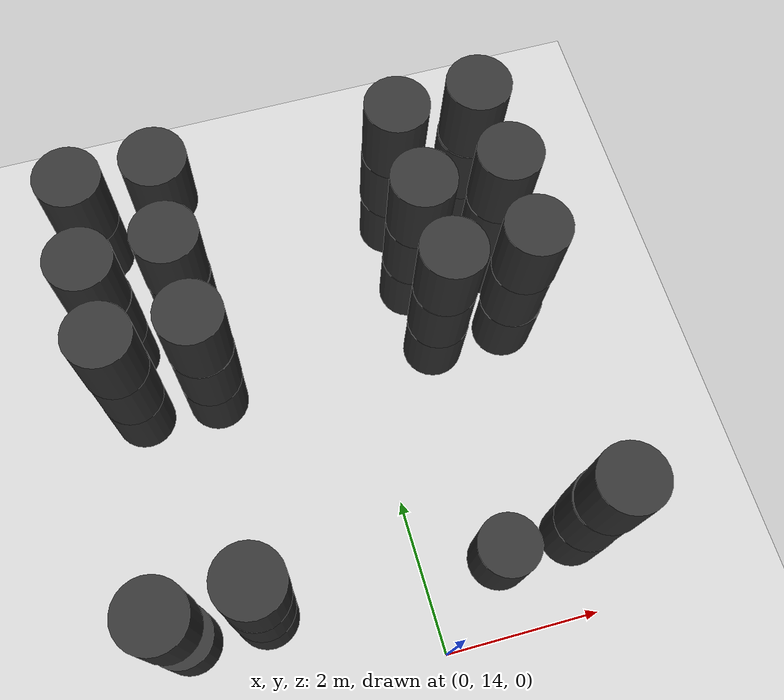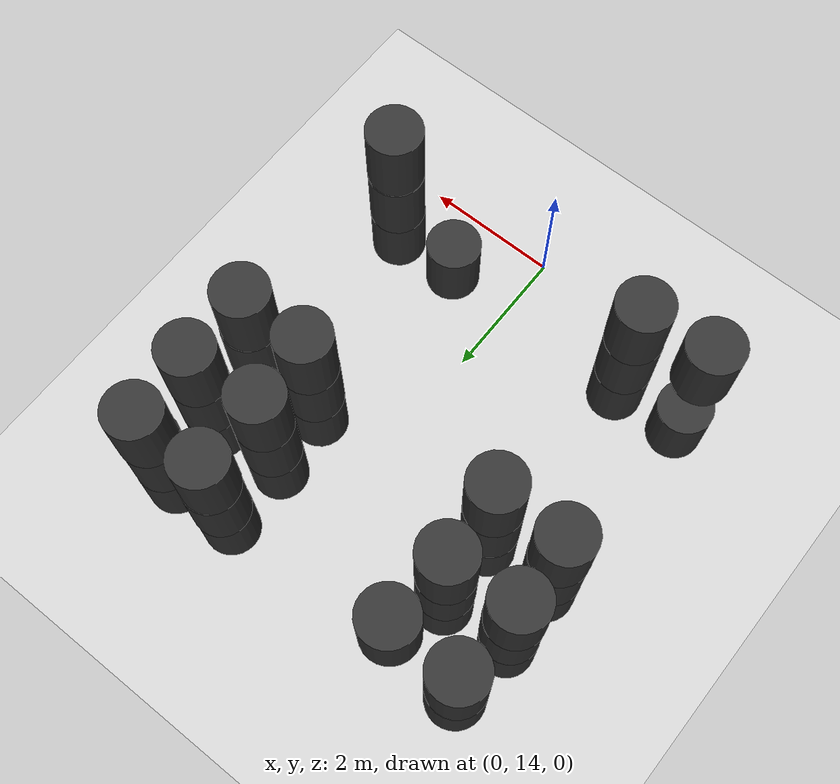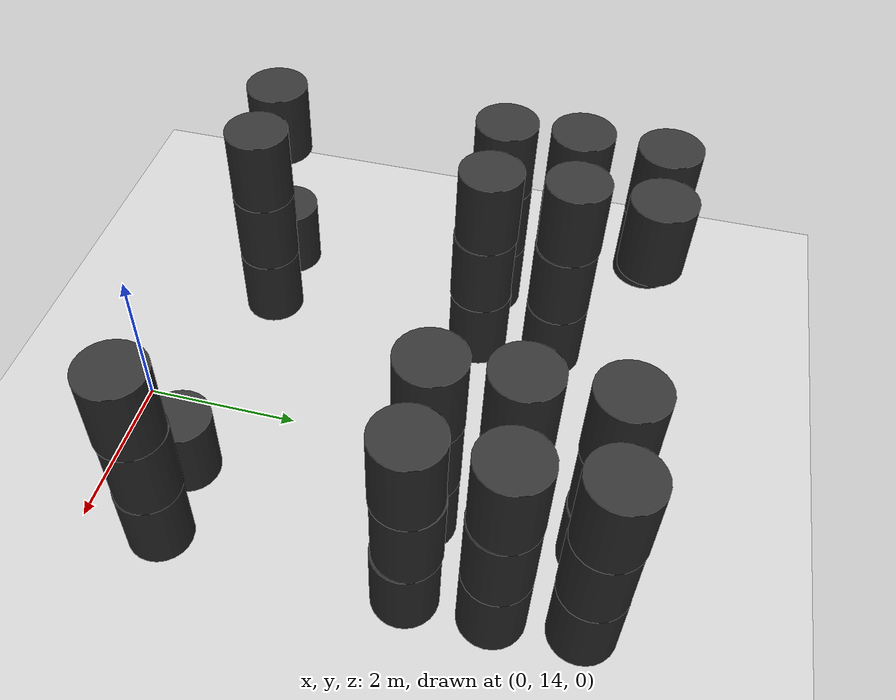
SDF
<sdf version="1.6">
 <world name="default">
  <include><uri>model://ground_plane</uri></include>
  <model name="cylinder_24">
   <pose frame="sim_world">-3.042406147 14.9754270639 0.5 0 -0 0</pose>
   <static>True</static>
   <link name="cylinder_24_link">
    <inertial>
     <mass>100</mass>
     <inertia><ixx>0.145833</ixx><ixy>0</ixy><ixz>0</ixz><iyy>0.145833</iyy><iyz>0</iyz><izz>0.125</izz></inertia>
    </inertial>
    <collision name="cylinder_24_collision">
     <geometry><cylinder><length>1.0</length><radius>0.4</radius></cylinder></geometry>
     <max_contacts>100</max_contacts>
    </collision>
    <visual name="cylinder_24_visual">
     <geometry><cylinder><length>1.0</length><radius>0.4</radius></cylinder></geometry>
     <material><ambient>0.2 0.2 0.2 1</ambient><diffuse>0.2 0.2 0.2 1</diffuse></material>
    </visual>
   </link>
  </model>
  <model name="cylinder_26">
   <pose frame="sim_world">-3.03224205885 14.9648059669 2.5 0 -0 0</pose>
   <static>True</static>
   <link name="cylinder_26_link">
    <inertial>
     <mass>100</mass>
     <inertia><ixx>0.145833</ixx><ixy>0</ixy><ixz>0</ixz><iyy>0.145833</iyy><iyz>0</iyz><izz>0.125</izz></inertia>
    </inertial>
    <collision name="cylinder_26_collision">
     <geometry><cylinder><length>1.0</length><radius>0.4</radius></cylinder></geometry>
     <max_contacts>100</max_contacts>
    </collision>
    <visual name="cylinder_26_visual">
     <geometry><cylinder><length>1.0</length><radius>0.4</radius></cylinder></geometry>
     <material><ambient>0.2 0.2 0.2 1</ambient><diffuse>0.2 0.2 0.2 1</diffuse></material>
    </visual>
   </link>
  </model>
  <model name="cylinder_27">
   <pose frame="sim_world">-3.00701187167 18.023755769 0.5 0 -0 0</pose>
   <static>True</static>
   <link name="cylinder_27_link">
    <inertial>
     <mass>100</mass>
     <inertia><ixx>0.145833</ixx><ixy>0</ixy><ixz>0</ixz><iyy>0.145833</iyy><iyz>0</iyz><izz>0.125</izz></inertia>
    </inertial>
    <collision name="cylinder_27_collision">
     <geometry><cylinder><length>1.0</length><radius>0.4</radius></cylinder></geometry>
     <max_contacts>100</max_contacts>
    </collision>
    <visual name="cylinder_27_visual">
     <geometry><cylinder><length>1.0</length><radius>0.4</radius></cylinder></geometry>
     <material><ambient>0.2 0.2 0.2 1</ambient><diffuse>0.2 0.2 0.2 1</diffuse></material>
    </visual>
   </link>
  </model>
  <model name="cylinder_28">
   <pose frame="sim_world">-3.00248028948 18.0226749165 1.5 0 -0 0</pose>
   <static>True</static>
   <link name="cylinder_28_link">
    <inertial>
     <mass>100</mass>
     <inertia><ixx>0.145833</ixx><ixy>0</ixy><ixz>0</ixz><iyy>0.145833</iyy><iyz>0</iyz><izz>0.125</izz></inertia>
    </inertial>
    <collision name="cylinder_28_collision">
     <geometry><cylinder><length>1.0</length><radius>0.4</radius></cylinder></geometry>
     <max_contacts>100</max_contacts>
    </collision>
    <visual name="cylinder_28_visual">
     <geometry><cylinder><length>1.0</length><radius>0.4</radius></cylinder></geometry>
     <material><ambient>0.2 0.2 0.2 1</ambient><diffuse>0.2 0.2 0.2 1</diffuse></material>
    </visual>
   </link>
  </model>
  <model name="cylinder_29">
   <pose frame="sim_world">-3.00870383393 18.0157991154 2.5 0 -0 0</pose>
   <static>True</static>
   <link name="cylinder_29_link">
    <inertial>
     <mass>100</mass>
     <inertia><ixx>0.145833</ixx><ixy>0</ixy><ixz>0</ixz><iyy>0.145833</iyy><iyz>0</iyz><izz>0.125</izz></inertia>
    </inertial>
    <collision name="cylinder_29_collision">
     <geometry><cylinder><length>1.0</length><radius>0.4</radius></cylinder></geometry>
     <max_contacts>100</max_contacts>
    </collision>
    <visual name="cylinder_29_visual">
     <geometry><cylinder><length>1.0</length><radius>0.4</radius></cylinder></geometry>
     <material><ambient>0.2 0.2 0.2 1</ambient><diffuse>0.2 0.2 0.2 1</diffuse></material>
    </visual>
   </link>
  </model>
  <model name="cylinder_30">
   <pose frame="sim_world">-3.03980811727 18.9614411124 0.5 0 -0 0</pose>
   <static>True</static>
   <link name="cylinder_30_link">
    <inertial>
     <mass>100</mass>
     <inertia><ixx>0.145833</ixx><ixy>0</ixy><ixz>0</ixz><iyy>0.145833</iyy><iyz>0</iyz><izz>0.125</izz></inertia>
    </inertial>
    <collision name="cylinder_30_collision">
     <geometry><cylinder><length>1.0</length><radius>0.4</radius></cylinder></geometry>
     <max_contacts>100</max_contacts>
    </collision>
    <visual name="cylinder_30_visual">
     <geometry><cylinder><length>1.0</length><radius>0.4</radius></cylinder></geometry>
     <material><ambient>0.2 0.2 0.2 1</ambient><diffuse>0.2 0.2 0.2 1</diffuse></material>
    </visual>
   </link>
  </model>
  <model name="cylinder_31">
   <pose frame="sim_world">-3.03408151154 18.9624144078 1.5 0 -0 0</pose>
   <static>True</static>
   <link name="cylinder_31_link">
    <inertial>
     <mass>100</mass>
     <inertia><ixx>0.145833</ixx><ixy>0</ixy><ixz>0</ixz><iyy>0.145833</iyy><iyz>0</iyz><izz>0.125</izz></inertia>
    </inertial>
    <collision name="cylinder_31_collision">
     <geometry><cylinder><length>1.0</length><radius>0.4</radius></cylinder></geometry>
     <max_contacts>100</max_contacts>
    </collision>
    <visual name="cylinder_31_visual">
     <geometry><cylinder><length>1.0</length><radius>0.4</radius></cylinder></geometry>
     <material><ambient>0.2 0.2 0.2 1</ambient><diffuse>0.2 0.2 0.2 1</diffuse></material>
    </visual>
   </link>
  </model>
  <model name="cylinder_32">
   <pose frame="sim_world">-3.04690763 18.9666969515 2.5 0 -0 0</pose>
   <static>True</static>
   <link name="cylinder_32_link">
    <inertial>
     <mass>100</mass>
     <inertia><ixx>0.145833</ixx><ixy>0</ixy><ixz>0</ixz><iyy>0.145833</iyy><iyz>0</iyz><izz>0.125</izz></inertia>
    </inertial>
    <collision name="cylinder_32_collision">
     <geometry><cylinder><length>1.0</length><radius>0.4</radius></cylinder></geometry>
     <max_contacts>100</max_contacts>
    </collision>
    <visual name="cylinder_32_visual">
     <geometry><cylinder><length>1.0</length><radius>0.4</radius></cylinder></geometry>
     <material><ambient>0.2 0.2 0.2 1</ambient><diffuse>0.2 0.2 0.2 1</diffuse></material>
    </visual>
   </link>
  </model>
  <model name="cylinder_34">
   <pose frame="sim_world">-2.99322209723 20.0410647307 1.5 0 -0 0</pose>
   <static>True</static>
   <link name="cylinder_34_link">
    <inertial>
     <mass>100</mass>
     <inertia><ixx>0.145833</ixx><ixy>0</ixy><ixz>0</ixz><iyy>0.145833</iyy><iyz>0</iyz><izz>0.125</izz></inertia>
    </inertial>
    <collision name="cylinder_34_collision">
     <geometry><cylinder><length>1.0</length><radius>0.4</radius></cylinder></geometry>
     <max_contacts>100</max_contacts>
    </collision>
    <visual name="cylinder_34_visual">
     <geometry><cylinder><length>1.0</length><radius>0.4</radius></cylinder></geometry>
     <material><ambient>0.2 0.2 0.2 1</ambient><diffuse>0.2 0.2 0.2 1</diffuse></material>
    </visual>
   </link>
  </model>
  <model name="cylinder_35">
   <pose frame="sim_world">-2.99016088027 20.0374575243 2.5 0 -0 0</pose>
   <static>True</static>
   <link name="cylinder_35_link">
    <inertial>
     <mass>100</mass>
     <inertia><ixx>0.145833</ixx><ixy>0</ixy><ixz>0</ixz><iyy>0.145833</iyy><iyz>0</iyz><izz>0.125</izz></inertia>
    </inertial>
    <collision name="cylinder_35_collision">
     <geometry><cylinder><length>1.0</length><radius>0.4</radius></cylinder></geometry>
     <max_contacts>100</max_contacts>
    </collision>
    <visual name="cylinder_35_visual">
     <geometry><cylinder><length>1.0</length><radius>0.4</radius></cylinder></geometry>
     <material><ambient>0.2 0.2 0.2 1</ambient><diffuse>0.2 0.2 0.2 1</diffuse></material>
    </visual>
   </link>
  </model>
  <model name="cylinder_69">
   <pose frame="sim_world">-2.03663103005 15.0308804364 0.5 0 -0 0</pose>
   <static>True</static>
   <link name="cylinder_69_link">
    <inertial>
     <mass>100</mass>
     <inertia><ixx>0.145833</ixx><ixy>0</ixy><ixz>0</ixz><iyy>0.145833</iyy><iyz>0</iyz><izz>0.125</izz></inertia>
    </inertial>
    <collision name="cylinder_69_collision">
     <geometry><cylinder><length>1.0</length><radius>0.4</radius></cylinder></geometry>
     <max_contacts>100</max_contacts>
    </collision>
    <visual name="cylinder_69_visual">
     <geometry><cylinder><length>1.0</length><radius>0.4</radius></cylinder></geometry>
     <material><ambient>0.2 0.2 0.2 1</ambient><diffuse>0.2 0.2 0.2 1</diffuse></material>
    </visual>
   </link>
  </model>
  <model name="cylinder_70">
   <pose frame="sim_world">-2.03726614534 15.0347342657 1.5 0 -0 0</pose>
   <static>True</static>
   <link name="cylinder_70_link">
    <inertial>
     <mass>100</mass>
     <inertia><ixx>0.145833</ixx><ixy>0</ixy><ixz>0</ixz><iyy>0.145833</iyy><iyz>0</iyz><izz>0.125</izz></inertia>
    </inertial>
    <collision name="cylinder_70_collision">
     <geometry><cylinder><length>1.0</length><radius>0.4</radius></cylinder></geometry>
     <max_contacts>100</max_contacts>
    </collision>
    <visual name="cylinder_70_visual">
     <geometry><cylinder><length>1.0</length><radius>0.4</radius></cylinder></geometry>
     <material><ambient>0.2 0.2 0.2 1</ambient><diffuse>0.2 0.2 0.2 1</diffuse></material>
    </visual>
   </link>
  </model>
  <model name="cylinder_71">
   <pose frame="sim_world">-2.03246359126 15.0422147881 2.5 0 -0 0</pose>
   <static>True</static>
   <link name="cylinder_71_link">
    <inertial>
     <mass>100</mass>
     <inertia><ixx>0.145833</ixx><ixy>0</ixy><ixz>0</ixz><iyy>0.145833</iyy><iyz>0</iyz><izz>0.125</izz></inertia>
    </inertial>
    <collision name="cylinder_71_collision">
     <geometry><cylinder><length>1.0</length><radius>0.4</radius></cylinder></geometry>
     <max_contacts>100</max_contacts>
    </collision>
    <visual name="cylinder_71_visual">
     <geometry><cylinder><length>1.0</length><radius>0.4</radius></cylinder></geometry>
     <material><ambient>0.2 0.2 0.2 1</ambient><diffuse>0.2 0.2 0.2 1</diffuse></material>
    </visual>
   </link>
  </model>
  <model name="cylinder_72">
   <pose frame="sim_world">-1.99405952904 18.0185740977 0.5 0 -0 0</pose>
   <static>True</static>
   <link name="cylinder_72_link">
    <inertial>
     <mass>100</mass>
     <inertia><ixx>0.145833</ixx><ixy>0</ixy><ixz>0</ixz><iyy>0.145833</iyy><iyz>0</iyz><izz>0.125</izz></inertia>
    </inertial>
    <collision name="cylinder_72_collision">
     <geometry><cylinder><length>1.0</length><radius>0.4</radius></cylinder></geometry>
     <max_contacts>100</max_contacts>
    </collision>
    <visual name="cylinder_72_visual">
     <geometry><cylinder><length>1.0</length><radius>0.4</radius></cylinder></geometry>
     <material><ambient>0.2 0.2 0.2 1</ambient><diffuse>0.2 0.2 0.2 1</diffuse></material>
    </visual>
   </link>
  </model>
  <model name="cylinder_73">
   <pose frame="sim_world">-1.99090825696 18.0053289946 1.5 0 -0 0</pose>
   <static>True</static>
   <link name="cylinder_73_link">
    <inertial>
     <mass>100</mass>
     <inertia><ixx>0.145833</ixx><ixy>0</ixy><ixz>0</ixz><iyy>0.145833</iyy><iyz>0</iyz><izz>0.125</izz></inertia>
    </inertial>
    <collision name="cylinder_73_collision">
     <geometry><cylinder><length>1.0</length><radius>0.4</radius></cylinder></geometry>
     <max_contacts>100</max_contacts>
    </collision>
    <visual name="cylinder_73_visual">
     <geometry><cylinder><length>1.0</length><radius>0.4</radius></cylinder></geometry>
     <material><ambient>0.2 0.2 0.2 1</ambient><diffuse>0.2 0.2 0.2 1</diffuse></material>
    </visual>
   </link>
  </model>
  <model name="cylinder_74">
   <pose frame="sim_world">-1.99715825339 18.0167414731 2.5 0 -0 0</pose>
   <static>True</static>
   <link name="cylinder_74_link">
    <inertial>
     <mass>100</mass>
     <inertia><ixx>0.145833</ixx><ixy>0</ixy><ixz>0</ixz><iyy>0.145833</iyy><iyz>0</iyz><izz>0.125</izz></inertia>
    </inertial>
    <collision name="cylinder_74_collision">
     <geometry><cylinder><length>1.0</length><radius>0.4</radius></cylinder></geometry>
     <max_contacts>100</max_contacts>
    </collision>
    <visual name="cylinder_74_visual">
     <geometry><cylinder><length>1.0</length><radius>0.4</radius></cylinder></geometry>
     <material><ambient>0.2 0.2 0.2 1</ambient><diffuse>0.2 0.2 0.2 1</diffuse></material>
    </visual>
   </link>
  </model>
  <model name="cylinder_75">
   <pose frame="sim_world">-2.03730893811 19.0309272025 0.5 0 -0 0</pose>
   <static>True</static>
   <link name="cylinder_75_link">
    <inertial>
     <mass>100</mass>
     <inertia><ixx>0.145833</ixx><ixy>0</ixy><ixz>0</ixz><iyy>0.145833</iyy><iyz>0</iyz><izz>0.125</izz></inertia>
    </inertial>
    <collision name="cylinder_75_collision">
     <geometry><cylinder><length>1.0</length><radius>0.4</radius></cylinder></geometry>
     <max_contacts>100</max_contacts>
    </collision>
    <visual name="cylinder_75_visual">
     <geometry><cylinder><length>1.0</length><radius>0.4</radius></cylinder></geometry>
     <material><ambient>0.2 0.2 0.2 1</ambient><diffuse>0.2 0.2 0.2 1</diffuse></material>
    </visual>
   </link>
  </model>
  <model name="cylinder_76">
   <pose frame="sim_world">-2.04659830205 19.0321695592 1.5 0 -0 0</pose>
   <static>True</static>
   <link name="cylinder_76_link">
    <inertial>
     <mass>100</mass>
     <inertia><ixx>0.145833</ixx><ixy>0</ixy><ixz>0</ixz><iyy>0.145833</iyy><iyz>0</iyz><izz>0.125</izz></inertia>
    </inertial>
    <collision name="cylinder_76_collision">
     <geometry><cylinder><length>1.0</length><radius>0.4</radius></cylinder></geometry>
     <max_contacts>100</max_contacts>
    </collision>
    <visual name="cylinder_76_visual">
     <geometry><cylinder><length>1.0</length><radius>0.4</radius></cylinder></geometry>
     <material><ambient>0.2 0.2 0.2 1</ambient><diffuse>0.2 0.2 0.2 1</diffuse></material>
    </visual>
   </link>
  </model>
  <model name="cylinder_77">
   <pose frame="sim_world">-2.05712838636 19.0462002758 2.5 0 -0 0</pose>
   <static>True</static>
   <link name="cylinder_77_link">
    <inertial>
     <mass>100</mass>
     <inertia><ixx>0.145833</ixx><ixy>0</ixy><ixz>0</ixz><iyy>0.145833</iyy><iyz>0</iyz><izz>0.125</izz></inertia>
    </inertial>
    <collision name="cylinder_77_collision">
     <geometry><cylinder><length>1.0</length><radius>0.4</radius></cylinder></geometry>
     <max_contacts>100</max_contacts>
    </collision>
    <visual name="cylinder_77_visual">
     <geometry><cylinder><length>1.0</length><radius>0.4</radius></cylinder></geometry>
     <material><ambient>0.2 0.2 0.2 1</ambient><diffuse>0.2 0.2 0.2 1</diffuse></material>
    </visual>
   </link>
  </model>
  <model name="cylinder_80">
   <pose frame="sim_world">-1.98465823563 20.045427806 2.5 0 -0 0</pose>
   <static>True</static>
   <link name="cylinder_80_link">
    <inertial>
     <mass>100</mass>
     <inertia><ixx>0.145833</ixx><ixy>0</ixy><ixz>0</ixz><iyy>0.145833</iyy><iyz>0</iyz><izz>0.125</izz></inertia>
    </inertial>
    <collision name="cylinder_80_collision">
     <geometry><cylinder><length>1.0</length><radius>0.4</radius></cylinder></geometry>
     <max_contacts>100</max_contacts>
    </collision>
    <visual name="cylinder_80_visual">
     <geometry><cylinder><length>1.0</length><radius>0.4</radius></cylinder></geometry>
     <material><ambient>0.2 0.2 0.2 1</ambient><diffuse>0.2 0.2 0.2 1</diffuse></material>
    </visual>
   </link>
  </model>
  <model name="cylinder_114">
   <pose frame="sim_world">0.996124343455 14.9641726461 0.5 0 -0 0</pose>
   <static>True</static>
   <link name="cylinder_114_link">
    <inertial>
     <mass>100</mass>
     <inertia><ixx>0.145833</ixx><ixy>0</ixy><ixz>0</ixz><iyy>0.145833</iyy><iyz>0</iyz><izz>0.125</izz></inertia>
    </inertial>
    <collision name="cylinder_114_collision">
     <geometry><cylinder><length>1.0</length><radius>0.4</radius></cylinder></geometry>
     <max_contacts>100</max_contacts>
    </collision>
    <visual name="cylinder_114_visual">
     <geometry><cylinder><length>1.0</length><radius>0.4</radius></cylinder></geometry>
     <material><ambient>0.2 0.2 0.2 1</ambient><diffuse>0.2 0.2 0.2 1</diffuse></material>
    </visual>
   </link>
  </model>
  <model name="cylinder_117">
   <pose frame="sim_world">1.04102514024 17.9963291876 0.5 0 -0 0</pose>
   <static>True</static>
   <link name="cylinder_117_link">
    <inertial>
     <mass>100</mass>
     <inertia><ixx>0.145833</ixx><ixy>0</ixy><ixz>0</ixz><iyy>0.145833</iyy><iyz>0</iyz><izz>0.125</izz></inertia>
    </inertial>
    <collision name="cylinder_117_collision">
     <geometry><cylinder><length>1.0</length><radius>0.4</radius></cylinder></geometry>
     <max_contacts>100</max_contacts>
    </collision>
    <visual name="cylinder_117_visual">
     <geometry><cylinder><length>1.0</length><radius>0.4</radius></cylinder></geometry>
     <material><ambient>0.2 0.2 0.2 1</ambient><diffuse>0.2 0.2 0.2 1</diffuse></material>
    </visual>
   </link>
  </model>
  <model name="cylinder_118">
   <pose frame="sim_world">1.029678093 17.9989379026 1.5 0 -0 0</pose>
   <static>True</static>
   <link name="cylinder_118_link">
    <inertial>
     <mass>100</mass>
     <inertia><ixx>0.145833</ixx><ixy>0</ixy><ixz>0</ixz><iyy>0.145833</iyy><iyz>0</iyz><izz>0.125</izz></inertia>
    </inertial>
    <collision name="cylinder_118_collision">
     <geometry><cylinder><length>1.0</length><radius>0.4</radius></cylinder></geometry>
     <max_contacts>100</max_contacts>
    </collision>
    <visual name="cylinder_118_visual">
     <geometry><cylinder><length>1.0</length><radius>0.4</radius></cylinder></geometry>
     <material><ambient>0.2 0.2 0.2 1</ambient><diffuse>0.2 0.2 0.2 1</diffuse></material>
    </visual>
   </link>
  </model>
  <model name="cylinder_119">
   <pose frame="sim_world">1.03206559742 18.0052372704 2.5 0 -0 0</pose>
   <static>True</static>
   <link name="cylinder_119_link">
    <inertial>
     <mass>100</mass>
     <inertia><ixx>0.145833</ixx><ixy>0</ixy><ixz>0</ixz><iyy>0.145833</iyy><iyz>0</iyz><izz>0.125</izz></inertia>
    </inertial>
    <collision name="cylinder_119_collision">
     <geometry><cylinder><length>1.0</length><radius>0.4</radius></cylinder></geometry>
     <max_contacts>100</max_contacts>
    </collision>
    <visual name="cylinder_119_visual">
     <geometry><cylinder><length>1.0</length><radius>0.4</radius></cylinder></geometry>
     <material><ambient>0.2 0.2 0.2 1</ambient><diffuse>0.2 0.2 0.2 1</diffuse></material>
    </visual>
   </link>
  </model>
  <model name="cylinder_120">
   <pose frame="sim_world">0.967918798331 18.9528650602 0.5 0 -0 0</pose>
   <static>True</static>
   <link name="cylinder_120_link">
    <inertial>
     <mass>100</mass>
     <inertia><ixx>0.145833</ixx><ixy>0</ixy><ixz>0</ixz><iyy>0.145833</iyy><iyz>0</iyz><izz>0.125</izz></inertia>
    </inertial>
    <collision name="cylinder_120_collision">
     <geometry><cylinder><length>1.0</length><radius>0.4</radius></cylinder></geometry>
     <max_contacts>100</max_contacts>
    </collision>
    <visual name="cylinder_120_visual">
     <geometry><cylinder><length>1.0</length><radius>0.4</radius></cylinder></geometry>
     <material><ambient>0.2 0.2 0.2 1</ambient><diffuse>0.2 0.2 0.2 1</diffuse></material>
    </visual>
   </link>
  </model>
  <model name="cylinder_121">
   <pose frame="sim_world">0.971932264484 18.9574443909 1.5 0 -0 0</pose>
   <static>True</static>
   <link name="cylinder_121_link">
    <inertial>
     <mass>100</mass>
     <inertia><ixx>0.145833</ixx><ixy>0</ixy><ixz>0</ixz><iyy>0.145833</iyy><iyz>0</iyz><izz>0.125</izz></inertia>
    </inertial>
    <collision name="cylinder_121_collision">
     <geometry><cylinder><length>1.0</length><radius>0.4</radius></cylinder></geometry>
     <max_contacts>100</max_contacts>
    </collision>
    <visual name="cylinder_121_visual">
     <geometry><cylinder><length>1.0</length><radius>0.4</radius></cylinder></geometry>
     <material><ambient>0.2 0.2 0.2 1</ambient><diffuse>0.2 0.2 0.2 1</diffuse></material>
    </visual>
   </link>
  </model>
  <model name="cylinder_122">
   <pose frame="sim_world">0.971240906726 18.9566036127 2.5 0 -0 0</pose>
   <static>True</static>
   <link name="cylinder_122_link">
    <inertial>
     <mass>100</mass>
     <inertia><ixx>0.145833</ixx><ixy>0</ixy><ixz>0</ixz><iyy>0.145833</iyy><iyz>0</iyz><izz>0.125</izz></inertia>
    </inertial>
    <collision name="cylinder_122_collision">
     <geometry><cylinder><length>1.0</length><radius>0.4</radius></cylinder></geometry>
     <max_contacts>100</max_contacts>
    </collision>
    <visual name="cylinder_122_visual">
     <geometry><cylinder><length>1.0</length><radius>0.4</radius></cylinder></geometry>
     <material><ambient>0.2 0.2 0.2 1</ambient><diffuse>0.2 0.2 0.2 1</diffuse></material>
    </visual>
   </link>
  </model>
  <model name="cylinder_123">
   <pose frame="sim_world">0.964876913284 19.9847835843 0.5 0 -0 0</pose>
   <static>True</static>
   <link name="cylinder_123_link">
    <inertial>
     <mass>100</mass>
     <inertia><ixx>0.145833</ixx><ixy>0</ixy><ixz>0</ixz><iyy>0.145833</iyy><iyz>0</iyz><izz>0.125</izz></inertia>
    </inertial>
    <collision name="cylinder_123_collision">
     <geometry><cylinder><length>1.0</length><radius>0.4</radius></cylinder></geometry>
     <max_contacts>100</max_contacts>
    </collision>
    <visual name="cylinder_123_visual">
     <geometry><cylinder><length>1.0</length><radius>0.4</radius></cylinder></geometry>
     <material><ambient>0.2 0.2 0.2 1</ambient><diffuse>0.2 0.2 0.2 1</diffuse></material>
    </visual>
   </link>
  </model>
  <model name="cylinder_124">
   <pose frame="sim_world">0.952376250132 20.0012894004 1.5 0 -0 0</pose>
   <static>True</static>
   <link name="cylinder_124_link">
    <inertial>
     <mass>100</mass>
     <inertia><ixx>0.145833</ixx><ixy>0</ixy><ixz>0</ixz><iyy>0.145833</iyy><iyz>0</iyz><izz>0.125</izz></inertia>
    </inertial>
    <collision name="cylinder_124_collision">
     <geometry><cylinder><length>1.0</length><radius>0.4</radius></cylinder></geometry>
     <max_contacts>100</max_contacts>
    </collision>
    <visual name="cylinder_124_visual">
     <geometry><cylinder><length>1.0</length><radius>0.4</radius></cylinder></geometry>
     <material><ambient>0.2 0.2 0.2 1</ambient><diffuse>0.2 0.2 0.2 1</diffuse></material>
    </visual>
   </link>
  </model>
  <model name="cylinder_125">
   <pose frame="sim_world">0.953409384163 19.9889078603 2.5 0 -0 0</pose>
   <static>True</static>
   <link name="cylinder_125_link">
    <inertial>
     <mass>100</mass>
     <inertia><ixx>0.145833</ixx><ixy>0</ixy><ixz>0</ixz><iyy>0.145833</iyy><iyz>0</iyz><izz>0.125</izz></inertia>
    </inertial>
    <collision name="cylinder_125_collision">
     <geometry><cylinder><length>1.0</length><radius>0.4</radius></cylinder></geometry>
     <max_contacts>100</max_contacts>
    </collision>
    <visual name="cylinder_125_visual">
     <geometry><cylinder><length>1.0</length><radius>0.4</radius></cylinder></geometry>
     <material><ambient>0.2 0.2 0.2 1</ambient><diffuse>0.2 0.2 0.2 1</diffuse></material>
    </visual>
   </link>
  </model>
  <model name="cylinder_159">
   <pose frame="sim_world">1.99298833005 15.0145017672 0.5 0 -0 0</pose>
   <static>True</static>
   <link name="cylinder_159_link">
    <inertial>
     <mass>100</mass>
     <inertia><ixx>0.145833</ixx><ixy>0</ixy><ixz>0</ixz><iyy>0.145833</iyy><iyz>0</iyz><izz>0.125</izz></inertia>
    </inertial>
    <collision name="cylinder_159_collision">
     <geometry><cylinder><length>1.0</length><radius>0.4</radius></cylinder></geometry>
     <max_contacts>100</max_contacts>
    </collision>
    <visual name="cylinder_159_visual">
     <geometry><cylinder><length>1.0</length><radius>0.4</radius></cylinder></geometry>
     <material><ambient>0.2 0.2 0.2 1</ambient><diffuse>0.2 0.2 0.2 1</diffuse></material>
    </visual>
   </link>
  </model>
  <model name="cylinder_160">
   <pose frame="sim_world">1.98660524012 15.0250951321 1.5 0 -0 0</pose>
   <static>True</static>
   <link name="cylinder_160_link">
    <inertial>
     <mass>100</mass>
     <inertia><ixx>0.145833</ixx><ixy>0</ixy><ixz>0</ixz><iyy>0.145833</iyy><iyz>0</iyz><izz>0.125</izz></inertia>
    </inertial>
    <collision name="cylinder_160_collision">
     <geometry><cylinder><length>1.0</length><radius>0.4</radius></cylinder></geometry>
     <max_contacts>100</max_contacts>
    </collision>
    <visual name="cylinder_160_visual">
     <geometry><cylinder><length>1.0</length><radius>0.4</radius></cylinder></geometry>
     <material><ambient>0.2 0.2 0.2 1</ambient><diffuse>0.2 0.2 0.2 1</diffuse></material>
    </visual>
   </link>
  </model>
  <model name="cylinder_161">
   <pose frame="sim_world">2.00185205963 15.0141428727 2.5 0 -0 0</pose>
   <static>True</static>
   <link name="cylinder_161_link">
    <inertial>
     <mass>100</mass>
     <inertia><ixx>0.145833</ixx><ixy>0</ixy><ixz>0</ixz><iyy>0.145833</iyy><iyz>0</iyz><izz>0.125</izz></inertia>
    </inertial>
    <collision name="cylinder_161_collision">
     <geometry><cylinder><length>1.0</length><radius>0.4</radius></cylinder></geometry>
     <max_contacts>100</max_contacts>
    </collision>
    <visual name="cylinder_161_visual">
     <geometry><cylinder><length>1.0</length><radius>0.4</radius></cylinder></geometry>
     <material><ambient>0.2 0.2 0.2 1</ambient><diffuse>0.2 0.2 0.2 1</diffuse></material>
    </visual>
   </link>
  </model>
  <model name="cylinder_162">
   <pose frame="sim_world">2.05473894236 18.0254847645 0.5 0 -0 0</pose>
   <static>True</static>
   <link name="cylinder_162_link">
    <inertial>
     <mass>100</mass>
     <inertia><ixx>0.145833</ixx><ixy>0</ixy><ixz>0</ixz><iyy>0.145833</iyy><iyz>0</iyz><izz>0.125</izz></inertia>
    </inertial>
    <collision name="cylinder_162_collision">
     <geometry><cylinder><length>1.0</length><radius>0.4</radius></cylinder></geometry>
     <max_contacts>100</max_contacts>
    </collision>
    <visual name="cylinder_162_visual">
     <geometry><cylinder><length>1.0</length><radius>0.4</radius></cylinder></geometry>
     <material><ambient>0.2 0.2 0.2 1</ambient><diffuse>0.2 0.2 0.2 1</diffuse></material>
    </visual>
   </link>
  </model>
  <model name="cylinder_163">
   <pose frame="sim_world">2.03820375499 18.0403755427 1.5 0 -0 0</pose>
   <static>True</static>
   <link name="cylinder_163_link">
    <inertial>
     <mass>100</mass>
     <inertia><ixx>0.145833</ixx><ixy>0</ixy><ixz>0</ixz><iyy>0.145833</iyy><iyz>0</iyz><izz>0.125</izz></inertia>
    </inertial>
    <collision name="cylinder_163_collision">
     <geometry><cylinder><length>1.0</length><radius>0.4</radius></cylinder></geometry>
     <max_contacts>100</max_contacts>
    </collision>
    <visual name="cylinder_163_visual">
     <geometry><cylinder><length>1.0</length><radius>0.4</radius></cylinder></geometry>
     <material><ambient>0.2 0.2 0.2 1</ambient><diffuse>0.2 0.2 0.2 1</diffuse></material>
    </visual>
   </link>
  </model>
  <model name="cylinder_164">
   <pose frame="sim_world">2.03790523562 18.0234496117 2.5 0 -0 0</pose>
   <static>True</static>
   <link name="cylinder_164_link">
    <inertial>
     <mass>100</mass>
     <inertia><ixx>0.145833</ixx><ixy>0</ixy><ixz>0</ixz><iyy>0.145833</iyy><iyz>0</iyz><izz>0.125</izz></inertia>
    </inertial>
    <collision name="cylinder_164_collision">
     <geometry><cylinder><length>1.0</length><radius>0.4</radius></cylinder></geometry>
     <max_contacts>100</max_contacts>
    </collision>
    <visual name="cylinder_164_visual">
     <geometry><cylinder><length>1.0</length><radius>0.4</radius></cylinder></geometry>
     <material><ambient>0.2 0.2 0.2 1</ambient><diffuse>0.2 0.2 0.2 1</diffuse></material>
    </visual>
   </link>
  </model>
  <model name="cylinder_165">
   <pose frame="sim_world">2.04717314227 19.0198589746 0.5 0 -0 0</pose>
   <static>True</static>
   <link name="cylinder_165_link">
    <inertial>
     <mass>100</mass>
     <inertia><ixx>0.145833</ixx><ixy>0</ixy><ixz>0</ixz><iyy>0.145833</iyy><iyz>0</iyz><izz>0.125</izz></inertia>
    </inertial>
    <collision name="cylinder_165_collision">
     <geometry><cylinder><length>1.0</length><radius>0.4</radius></cylinder></geometry>
     <max_contacts>100</max_contacts>
    </collision>
    <visual name="cylinder_165_visual">
     <geometry><cylinder><length>1.0</length><radius>0.4</radius></cylinder></geometry>
     <material><ambient>0.2 0.2 0.2 1</ambient><diffuse>0.2 0.2 0.2 1</diffuse></material>
    </visual>
   </link>
   <model name="radiation_source_cylinder_165">
    <static>true</static>
    <link name="link_radiation_source_cylinder_165">
     <visual name="visual_radiation_source_cylinder_165_0">
      <geometry><box><size>0.1 0.1 0.1</size></box></geometry>
      <material><ambient>1 0.0  0 1.0</ambient><diffuse>1 0.0  0 1.0</diffuse></material>
     </visual>
     <visual name="visual_radiation_source_cylinder_165_1">
      <pose>0 0 2.0 0 0 0</pose>
      <geometry><box><size>0.1 0.1 0.1</size></box></geometry>
      <material><ambient>0 1.0  0 1.0</ambient><diffuse>0 1.0  0 1.0</diffuse></material>
     </visual>
     <sensor name="radiation_source_cylinder_165" type="radiation_source">
      <always_on>1</always_on>
      <update_rate>100.0</update_rate>
      <topic>source_3/gamma</topic>
      <plugin filename="libradiation_source_plugin.so" name="radiation_source_plugin"/>
     </sensor>
    </link>
   </model>
  </model>
  <model name="cylinder_166">
   <pose frame="sim_world">2.05329016797 19.0212795196 1.5 0 -0 0</pose>
   <static>True</static>
   <link name="cylinder_166_link">
    <inertial>
     <mass>100</mass>
     <inertia><ixx>0.145833</ixx><ixy>0</ixy><ixz>0</ixz><iyy>0.145833</iyy><iyz>0</iyz><izz>0.125</izz></inertia>
    </inertial>
    <collision name="cylinder_166_collision">
     <geometry><cylinder><length>1.0</length><radius>0.4</radius></cylinder></geometry>
     <max_contacts>100</max_contacts>
    </collision>
    <visual name="cylinder_166_visual">
     <geometry><cylinder><length>1.0</length><radius>0.4</radius></cylinder></geometry>
     <material><ambient>0.2 0.2 0.2 1</ambient><diffuse>0.2 0.2 0.2 1</diffuse></material>
    </visual>
   </link>
  </model>
  <model name="cylinder_167">
   <pose frame="sim_world">2.04477487745 19.0292876407 2.5 0 -0 0</pose>
   <static>True</static>
   <link name="cylinder_167_link">
    <inertial>
     <mass>100</mass>
     <inertia><ixx>0.145833</ixx><ixy>0</ixy><ixz>0</ixz><iyy>0.145833</iyy><iyz>0</iyz><izz>0.125</izz></inertia>
    </inertial>
    <collision name="cylinder_167_collision">
     <geometry><cylinder><length>1.0</length><radius>0.4</radius></cylinder></geometry>
     <max_contacts>100</max_contacts>
    </collision>
    <visual name="cylinder_167_visual">
     <geometry><cylinder><length>1.0</length><radius>0.4</radius></cylinder></geometry>
     <material><ambient>0.2 0.2 0.2 1</ambient><diffuse>0.2 0.2 0.2 1</diffuse></material>
    </visual>
   </link>
  </model>
  <model name="cylinder_168">
   <pose frame="sim_world">1.97261090116 20.0256927162 0.5 0 -0 0</pose>
   <static>True</static>
   <link name="cylinder_168_link">
    <inertial>
     <mass>100</mass>
     <inertia><ixx>0.145833</ixx><ixy>0</ixy><ixz>0</ixz><iyy>0.145833</iyy><iyz>0</iyz><izz>0.125</izz></inertia>
    </inertial>
    <collision name="cylinder_168_collision">
     <geometry><cylinder><length>1.0</length><radius>0.4</radius></cylinder></geometry>
     <max_contacts>100</max_contacts>
    </collision>
    <visual name="cylinder_168_visual">
     <geometry><cylinder><length>1.0</length><radius>0.4</radius></cylinder></geometry>
     <material><ambient>0.2 0.2 0.2 1</ambient><diffuse>0.2 0.2 0.2 1</diffuse></material>
    </visual>
   </link>
  </model>
  <model name="cylinder_169">
   <pose frame="sim_world">1.97188468031 20.021602045 1.5 0 -0 0</pose>
   <static>True</static>
   <link name="cylinder_169_link">
    <inertial>
     <mass>100</mass>
     <inertia><ixx>0.145833</ixx><ixy>0</ixy><ixz>0</ixz><iyy>0.145833</iyy><iyz>0</iyz><izz>0.125</izz></inertia>
    </inertial>
    <collision name="cylinder_169_collision">
     <geometry><cylinder><length>1.0</length><radius>0.4</radius></cylinder></geometry>
     <max_contacts>100</max_contacts>
    </collision>
    <visual name="cylinder_169_visual">
     <geometry><cylinder><length>1.0</length><radius>0.4</radius></cylinder></geometry>
     <material><ambient>0.2 0.2 0.2 1</ambient><diffuse>0.2 0.2 0.2 1</diffuse></material>
    </visual>
   </link>
  </model>
  <model name="cylinder_170">
   <pose frame="sim_world">1.98540222881 20.0305679669 2.5 0 -0 0</pose>
   <static>True</static>
   <link name="cylinder_170_link">
    <inertial>
     <mass>100</mass>
     <inertia><ixx>0.145833</ixx><ixy>0</ixy><ixz>0</ixz><iyy>0.145833</iyy><iyz>0</iyz><izz>0.125</izz></inertia>
    </inertial>
    <collision name="cylinder_170_collision">
     <geometry><cylinder><length>1.0</length><radius>0.4</radius></cylinder></geometry>
     <max_contacts>100</max_contacts>
    </collision>
    <visual name="cylinder_170_visual">
     <geometry><cylinder><length>1.0</length><radius>0.4</radius></cylinder></geometry>
     <material><ambient>0.2 0.2 0.2 1</ambient><diffuse>0.2 0.2 0.2 1</diffuse></material>
    </visual>
   </link>
  </model>
  <model name="ground_plane"><link name="ground_plane"/></model>
 </world>
</sdf>
